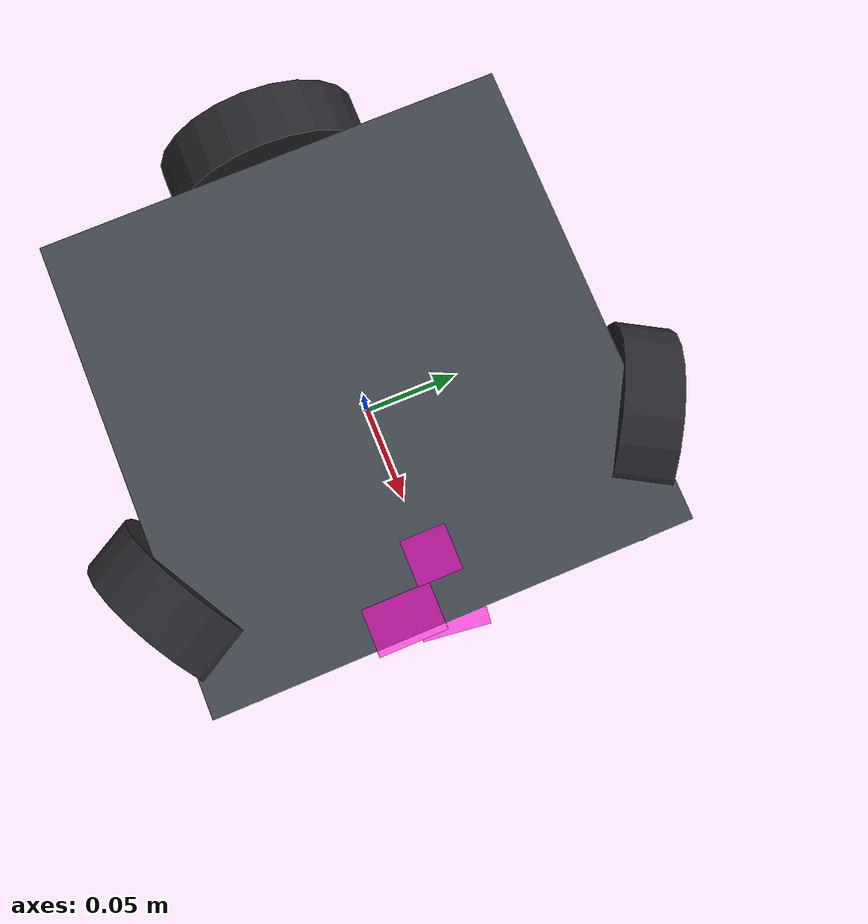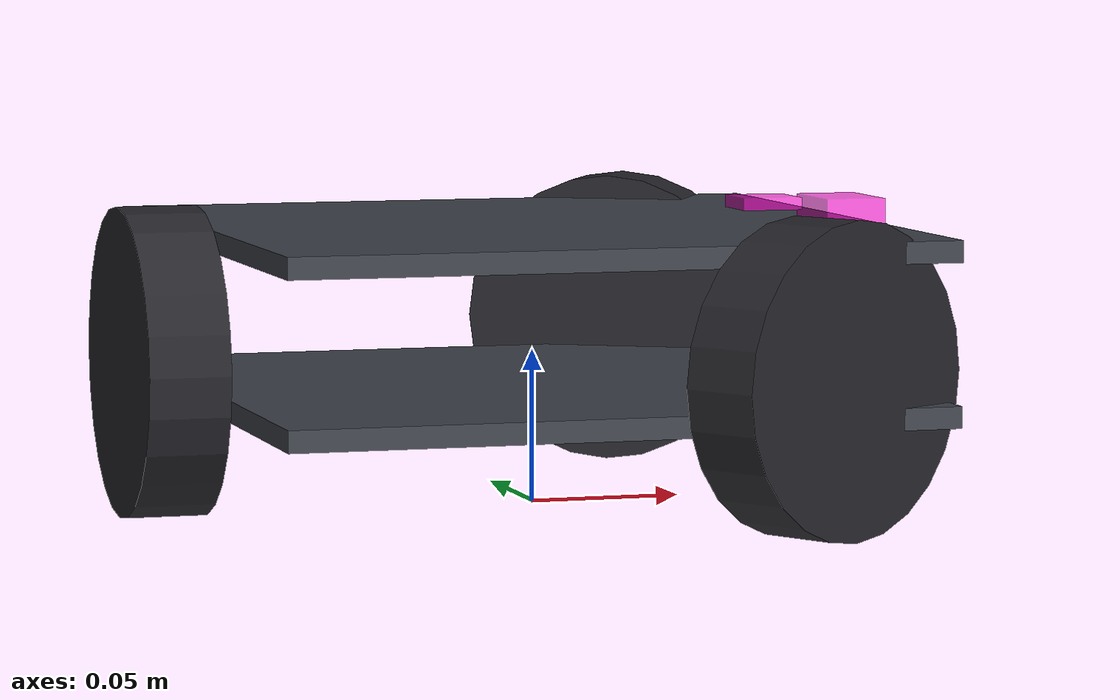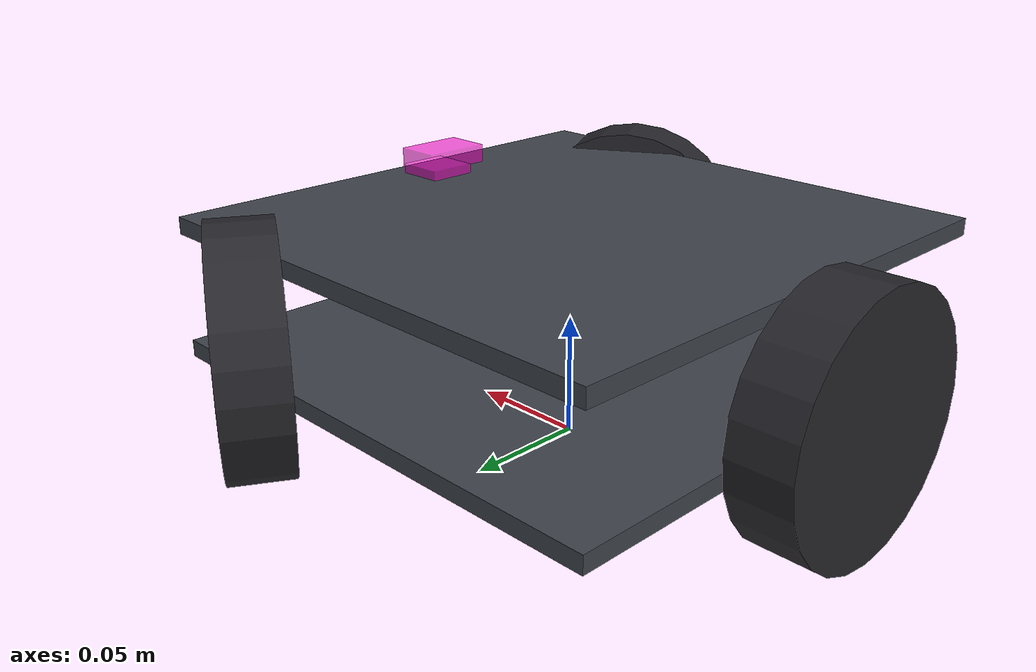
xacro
<?xml version="1.0"?>
<robot xmlns:xacro="http://www.ros.org/wiki/xacro" name="lekiwi">

  <xacro:arg name="prefix" default=""/>
  <xacro:arg name="use_mesh" default="false"/>
  <xacro:arg name="wheel_radius" default="0.05"/>
  <xacro:arg name="base_radius" default="0.125"/>

  <xacro:include filename="$(find lekiwi_description)/urdf/lekiwi_base.macro.xacro"/>

  <xacro:lekiwi_base
      prefix="$(arg prefix)"
      use_mesh="$(arg use_mesh)"
      wheel_radius="$(arg wheel_radius)"
      base_radius="$(arg base_radius)"/>

</robot>

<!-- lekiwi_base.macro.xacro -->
<robot xmlns:xacro="http://www.ros.org/wiki/xacro">

  <xacro:macro name="lekiwi_base"
               params="prefix:=''
                       use_mesh:=false
                       wheel_radius:=0.05
                       base_radius:=0.125">

    <!-- ================= 寸法 (CAD 由来) ================= -->

    <!-- 下段プレート上面 (= base_link 原点) の地面からの実測値。 -->
    <xacro:property name="base_link_z" value="0.040"/>

    <!-- 車軸の高さ。車輪が地面に接するよう、車輪半径から導出する。 -->
    <xacro:property name="axle_z" value="${wheel_radius - base_link_z}"/>

    <xacro:property name="wheel_width" value="0.026"/>  <!-- 仮値: 見た目のみ -->

    <!-- ベースプレート: CAD bbox [-107.9,-105,-7]..[107.9,107.9,0] mm -->
    <xacro:property name="plate_size" value="0.216"/>
    <xacro:property name="plate_thickness" value="0.007"/>

    <!-- 第2プレート: 上面間の実測値 92 - 40 = 52 mm -->
    <xacro:property name="plate2_z" value="0.052"/>

    <!-- CAD 座標系 → base_link の回転。メッシュを使う場合に必要 -->
    <xacro:property name="cad_yaw" value="${-pi/2}"/>

    <!-- LiDAR回転中心: x=100 mm, y=0 mm, z=30 mm。yaw=-7 deg指定 -->
    <xacro:property name="laser_xyz" value="0.10 0 0.03"/>
    <xacro:property name="laser_rpy" value="0 0 -0.1221730476"/>
    <!-- カメラマウントは CAD 由来 (CAD (0.02, 0.1, 0) → base_link (0.1, -0.02, 0))。
         光学フレームのオフセットは未実測。 -->
    <xacro:property name="camera_xyz_TBD" value="0.1 -0.02 0.05"/>
    <xacro:property name="camera_rpy_TBD" value="0 0 0"/>

    <!-- ================= マテリアル ================= -->

    <material name="lekiwi_plate">
      <color rgba="0.25 0.27 0.30 1.0"/>
    </material>
    <material name="lekiwi_wheel">
      <color rgba="0.15 0.15 0.17 1.0"/>
    </material>
    <material name="lekiwi_tbd">
      <!-- 未実測フレームの目印。RViz で目立つマゼンタ -->
      <color rgba="1.0 0.0 0.8 0.6"/>
    </material>

    <!-- ================= ベース ================= -->

    <link name="${prefix}base_footprint"/>

    <joint name="${prefix}base_footprint_joint" type="fixed">
      <origin xyz="0 0 ${base_link_z}" rpy="0 0 0"/>
      <parent link="${prefix}base_footprint"/>
      <child link="${prefix}base_link"/>
    </joint>

    <link name="${prefix}base_link">
      <visual>
        <xacro:unless value="${use_mesh}">
          <origin xyz="0 0 ${-plate_thickness/2}" rpy="0 0 0"/>
          <geometry>
            <box size="${plate_size} ${plate_size} ${plate_thickness}"/>
          </geometry>
          <material name="lekiwi_plate"/>
        </xacro:unless>
        <xacro:if value="${use_mesh}">
          <!-- メッシュは CAD 座標系で作られているので cad_yaw で回す -->
          <origin xyz="0 0 0" rpy="0 0 ${cad_yaw}"/>
          <geometry>
            <mesh filename="package://lekiwi_description/meshes/base_plate_layer1-v5.stl"
                  scale="0.001 0.001 0.001"/>
          </geometry>
          <material name="lekiwi_plate"/>
        </xacro:if>
      </visual>
      <collision>
        <!-- 衝突形状はメッシュを使う場合でも基本図形のまま。
             CAD の車輪メッシュは 31 万ポリゴンあり衝突判定には使えない。 -->
        <origin xyz="0 0 ${-plate_thickness/2}" rpy="0 0 0"/>
        <geometry>
          <box size="${plate_size} ${plate_size} ${plate_thickness}"/>
        </geometry>
      </collision>
      <inertial>
        <!-- CAD の慣性値は単一密度エクスポートで物理的に誤り
             (総重量 17 kg vs 実機 ~4 kg) なので流用せず概算値を置く。 -->
        <origin xyz="0 0 0.01" rpy="0 0 0"/>
        <mass value="2.0"/>
        <inertia ixx="0.013" ixy="0.0" ixz="0.0" iyy="0.013" iyz="0.0" izz="0.024"/>
      </inertial>
    </link>

    <!-- 第2プレート (アームとカメラが載る段) -->
    <joint name="${prefix}base_plate2_joint" type="fixed">
      <origin xyz="0 0 ${plate2_z}" rpy="0 0 0"/>
      <parent link="${prefix}base_link"/>
      <child link="${prefix}base_plate2_link"/>
    </joint>

    <link name="${prefix}base_plate2_link">
      <visual>
        <origin xyz="0 0 ${-plate_thickness/2}" rpy="0 0 0"/>
        <geometry>
          <box size="${plate_size} ${plate_size} ${plate_thickness}"/>
        </geometry>
        <material name="lekiwi_plate"/>
      </visual>
      <inertial>
        <origin xyz="0 0 0" rpy="0 0 0"/>
        <mass value="0.3"/>
        <inertia ixx="0.0012" ixy="0.0" ixz="0.0" iyy="0.0012" iyz="0.0" izz="0.0023"/>
      </inertial>
    </link>

    <!-- ================= 車輪 ================= -->

    <xacro:macro name="omni_wheel" params="name phi">
      <joint name="${prefix}base_${name}_wheel_joint" type="continuous">
        <origin xyz="${base_radius * cos(radians(phi))}
                     ${base_radius * sin(radians(phi))}
                     ${axle_z}"
                rpy="0 ${pi/2} ${radians(phi)}"/>
        <parent link="${prefix}base_link"/>
        <child link="${prefix}base_${name}_wheel_link"/>
        <axis xyz="0 0 1"/>
        <dynamics damping="0.01" friction="0.0"/>
      </joint>

      <link name="${prefix}base_${name}_wheel_link">
        <visual>
          <xacro:unless value="${use_mesh}">
            <origin xyz="0 0 0" rpy="0 0 0"/>
            <geometry>
              <cylinder radius="${wheel_radius}" length="${wheel_width}"/>
            </geometry>
            <material name="lekiwi_wheel"/>
          </xacro:unless>
          <xacro:if value="${use_mesh}">
            <!-- 車輪 STL はローカル +z が車軸なのでリンク座標系とそのまま一致する -->
            <origin xyz="0 0 0" rpy="0 0 0"/>
            <geometry>
              <mesh filename="package://lekiwi_description/meshes/omni_wheel.stl"
                    scale="0.001 0.001 0.001"/>
            </geometry>
            <material name="lekiwi_wheel"/>
          </xacro:if>
        </visual>
        <collision>
          <origin xyz="0 0 0" rpy="0 0 0"/>
          <geometry>
            <cylinder radius="${wheel_radius}" length="${wheel_width}"/>
          </geometry>
        </collision>
        <inertial>
          <origin xyz="0 0 0" rpy="0 0 0"/>
          <mass value="0.1"/>
          <inertia ixx="7.0e-5" ixy="0.0" ixz="0.0" iyy="7.0e-5" iyz="0.0" izz="1.25e-4"/>
        </inertial>
      </link>
    </xacro:macro>

    <!-- 方位角は上のコメントの導出どおり。モータ ID は 7 / 8 / 9 -->
    <xacro:omni_wheel name="left"  phi="60"/>    <!-- ID 7 -->
    <xacro:omni_wheel name="back"  phi="180"/>   <!-- ID 8 -->
    <xacro:omni_wheel name="right" phi="300"/>   <!-- ID 9 -->

    <!-- ================= センサ取付フレーム (未実測) ================= -->

    <joint name="${prefix}laser_joint" type="fixed">
      <origin xyz="${laser_xyz}" rpy="${laser_rpy}"/>
      <parent link="${prefix}base_link"/>
      <child link="${prefix}laser_link"/>
    </joint>

    <link name="${prefix}laser_link">
      <visual>
        <geometry>
          <box size="0.03 0.03 0.02"/>
        </geometry>
        <material name="lekiwi_tbd"/>
      </visual>
    </link>

    <joint name="${prefix}camera_mount_joint" type="fixed">
      <origin xyz="${camera_xyz_TBD}" rpy="${camera_rpy_TBD}"/>
      <parent link="${prefix}base_link"/>
      <child link="${prefix}camera_mount_link"/>
    </joint>

    <link name="${prefix}camera_mount_link">
      <visual>
        <geometry>
          <box size="0.02 0.03 0.02"/>
        </geometry>
        <material name="lekiwi_tbd"/>
      </visual>
    </link>

    <joint name="${prefix}arm_mount_joint" type="fixed">
      <origin xyz="0.08 0.00 0.057" rpy="0 0 0"/>
      <parent link="${prefix}base_link"/>
      <child link="${prefix}arm_mount_link"/>
    </joint>

    <!-- TBD 材質のマーカー。RViz で取付位置が未確定であることが見て分かるようにする。 -->
    <link name="${prefix}arm_mount_link">
      <visual>
        <geometry>
          <box size="0.02 0.02 0.004"/>
        </geometry>
        <material name="lekiwi_tbd"/>
      </visual>
    </link>

  </xacro:macro>
</robot>
